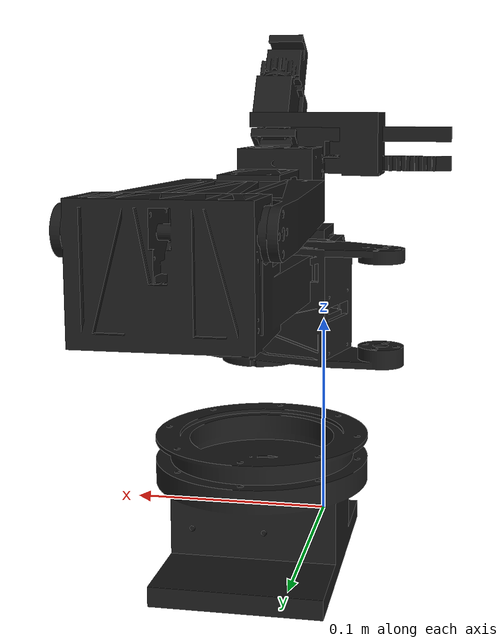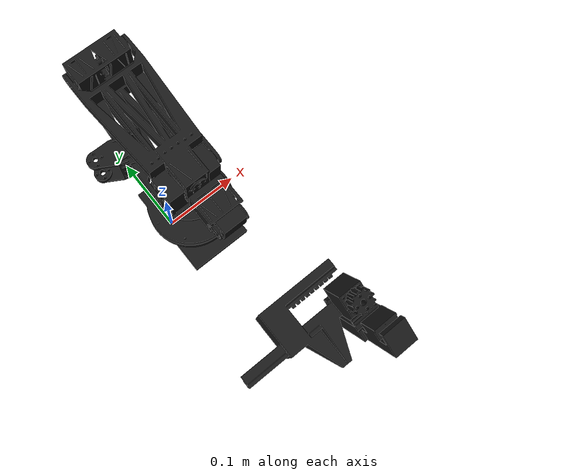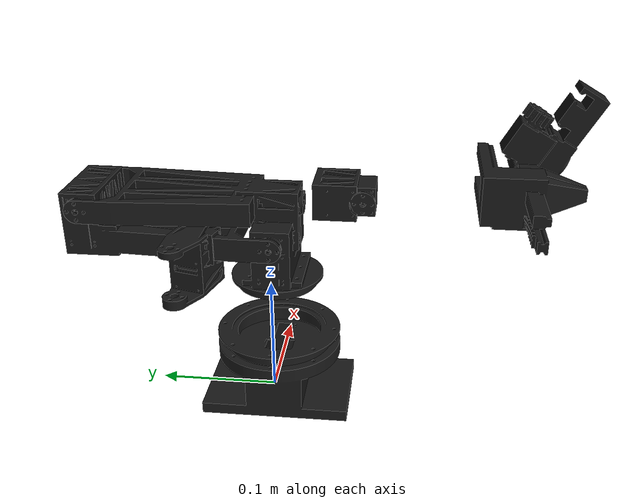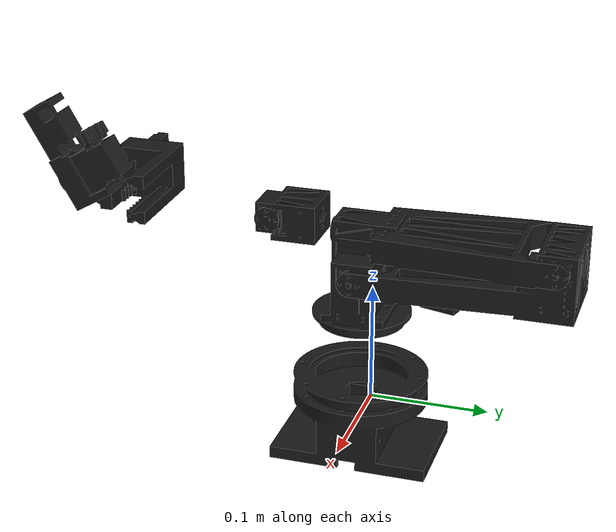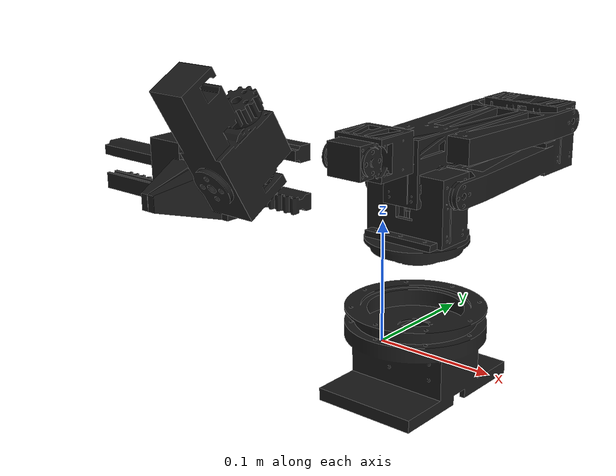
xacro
<?xml version="1.0"?>
<robot xmlns:xacro="http://www.ros.org/wiki/xacro" name="MarkII_urdf">
    <xacro:arg name="initial_positions_file" default="initial_positions.yaml" />

    <!-- Import MarkII_urdf urdf file -->
    <xacro:include filename="$(find simple_arm)/description/MarkII_urdf.urdf" />

    <!-- Import control_xacro -->
    <xacro:include filename="MarkII_urdf.ros2_control.xacro" />

    <xacro:MarkII_urdf_ros2_control name="FakeSystem" initial_positions_file="$(arg initial_positions_file)"/>

</robot>

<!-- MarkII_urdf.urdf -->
<robot name="MarkII_urdf">
    <link name="base_link">
        <inertial>
            <origin xyz="0.035458480343119846 -6.348038499793762e-05 0.04884264658749845" rpy="0.0 0.0 0.0" />
            <mass value="0.39602545916549503" />
            <inertia ixx="0.0008760560529699657" iyy="0.0006208810412874053" izz="0.0008639242629666616" ixy="-3.769413947208682e-08" iyz="4.586236426702315e-07" ixz="3.627291135214919e-05" />
        </inertial>
        <visual name="base_link_visual">
            <origin xyz="0.0 0.0 0.0" rpy="0.0 0.0 0.0" />
            <geometry>
                <mesh filename="package://simple_arm/meshes/base_link.stl" scale="0.001 0.001 0.001" />
            </geometry>
            <material name="Grey">
                <color rgba="0.1 0.1 0.1 1.0"/>
            </material>
        </visual>
        <collision name="base_link_collision">
            <origin xyz="0.0 0.0 0.0" rpy="0.0 0.0 0.0" />
            <geometry>
                <mesh filename="package://simple_arm/meshes/base_link.stl" scale="0.001 0.001 0.001" />
            </geometry>
        </collision>
    </link>
    <link name="link1">
        <inertial>
            <origin xyz="-0.0002704347594735834 5.857332049775781e-07 -0.018858068132557672" rpy="0.0 -0.0 0.0" />
            <mass value="0.1693636602695217" />
            <inertia ixx="9.137448780848672e-05" iyy="0.0001313693617072285" izz="9.559017464710466e-05" ixy="2.720487576872225e-09" iyz="-1.3245744038131203e-09" ixz="-4.5903464359968467e-07" />
        </inertial>
        <visual name="link1_visual">
            <origin xyz="9.999929548684338e-05 0.03250000019207488 0.09200000000000054" rpy="-3.1415926535897687 -7.208216521456998e-29 -1.5707963267948966" />
            <geometry>
                <mesh filename="package://simple_arm/meshes/link1.stl" scale="0.001 0.001 0.001" />
            </geometry>
            <material name="Grey">
                <color rgba="0.1 0.1 0.1 1.0"/>
            </material>
        </visual>
        <collision name="link1_collision">
            <origin xyz="9.999929548684338e-05 0.03250000019207488 0.09200000000000054" rpy="-3.1415926535897687 -7.208216521456998e-29 -1.5707963267948966" />
            <geometry>
                <mesh filename="package://simple_arm/meshes/link1.stl" scale="0.001 0.001 0.001" />
            </geometry>
        </collision>
    </link>
    <link name="link2">
        <inertial>
            <origin xyz="0.03760000011651115 0.0059319951687325555 -0.11925732977137538" rpy="7.88860905221012e-31 3.421138828918011e-49 -2.430865342914509e-63" />
            <mass value="1.7169294249777958" />
            <inertia ixx="0.0038562699005716536" iyy="0.0045067967357157665" izz="0.001231930246496139" ixy="1.5872719391665013e-16" iyz="0.00039574878190694356" ixz="7.6805583598243e-10" />
        </inertial>
        <visual name="link2_visual">
            <origin xyz="0.055865511020663394 -0.05559347310728084 0.17090147772739467" rpy="-3.1415926535897745 4.634311136164061e-15 -1.5707963267949183" />
            <geometry>
                <mesh filename="package://simple_arm/meshes/link2.stl" scale="0.001 0.001 0.001" />
            </geometry>
            <material name="Grey">
                <color rgba="0.1 0.1 0.1 1.0"/>
            </material>
        </visual>
        <collision name="link2_collision">
            <origin xyz="0.055865511020663394 -0.05559347310728084 0.17090147772739467" rpy="-3.1415926535897745 4.634311136164061e-15 -1.5707963267949183" />
            <geometry>
                <mesh filename="package://simple_arm/meshes/link2.stl" scale="0.001 0.001 0.001" />
            </geometry>
        </collision>
    </link>
    <link name="link3">
        <inertial>
            <origin xyz="0.03760663634504249 -0.0067660939590704315 -0.1156116487266119" rpy="-8.758115402030109e-47 -0.0 0.0" />
            <mass value="1.4797144091482912" />
            <inertia ixx="0.0038309475265955314" iyy="0.004170136098854015" izz="0.0009512994358775587" ixy="1.5677658128827873e-07" iyz="-0.00047433748121382917" ixz="2.834555275750896e-07" />
        </inertial>
        <visual name="link3_visual">
            <origin xyz="0.01933448921196167 0.05559347362881816 0.1709014775759369" rpy="3.1415926535897922 4.708572433932446e-16 1.5707963267949163" />
            <geometry>
                <mesh filename="package://simple_arm/meshes/link3.stl" scale="0.001 0.001 0.001" />
            </geometry>
            <material name="Grey">
                <color rgba="0.1 0.1 0.1 1.0"/>
            </material>
        </visual>
        <collision name="link3_collision">
            <origin xyz="0.01933448921196167 0.05559347362881816 0.1709014775759369" rpy="3.1415926535897922 4.708572433932446e-16 1.5707963267949163" />
            <geometry>
                <mesh filename="package://simple_arm/meshes/link3.stl" scale="0.001 0.001 0.001" />
            </geometry>
        </collision>
    </link>
    <link name="link4">
        <inertial>
            <origin xyz="-0.0006856444864441169 -0.025856823701627906 -2.6584211688884806e-07" rpy="0.0 -0.0 0.0" />
            <mass value="0.39283773638319275" />
            <inertia ixx="0.00010941578075797723" iyy="7.347508926037853e-05" izz="0.0001325327378877909" ixy="-1.7442449312230109e-06" iyz="-7.706476429498124e-11" ixz="1.5926628388861376e-09" />
        </inertial>
        <visual name="link4_visual">
            <origin xyz="-0.014999999876619503 -0.07860000031563046 0.03729999895692" rpy="-1.5707963267949088 1.5707963267948775 0" />
            <geometry>
                <mesh filename="package://simple_arm/meshes/link4.stl" scale="0.001 0.001 0.001" />
            </geometry>
            <material name="Grey">
                <color rgba="0.1 0.1 0.1 1.0"/>
            </material>
        </visual>
        <collision name="link4_collision">
            <origin xyz="-0.014999999876619503 -0.07860000031563046 0.03729999895692" rpy="-1.5707963267949088 1.5707963267948775 0" />
            <geometry>
                <mesh filename="package://simple_arm/meshes/link4.stl" scale="0.001 0.001 0.001" />
            </geometry>
        </collision>
    </link>
    <link name="link5">
        <inertial>
            <origin xyz="-0.01204269022263127 4.2064875323539755e-05 0.039175653835811335" rpy="0.0 -0.0 0.0" />
            <mass value="0.608125068740914" />
            <inertia ixx="0.00021837053677050897" iyy="0.0003469179926686751" izz="0.00024081655085987988" ixy="-7.322055258983418e-09" iyz="-6.787604473096183e-08" ixz="9.749665809387996e-06" />
        </inertial>
        <visual name="link5_visual">
            <origin xyz="-0.056699999876626564 -0.03725478487650168 -0.06389999968436498" rpy="7.746581154322007e-14 -4.565358189137846e-16 1.5707963267948781" />
            <geometry>
                <mesh filename="package://simple_arm/meshes/link5.stl" scale="0.001 0.001 0.001" />
            </geometry>
            <material name="Grey">
                <color rgba="0.1 0.1 0.1 1.0"/>
            </material>
        </visual>
        <collision name="link5_collision">
            <origin xyz="-0.056699999876626564 -0.03725478487650168 -0.06389999968436498" rpy="7.746581154322007e-14 -4.565358189137846e-16 1.5707963267948781" />
            <geometry>
                <mesh filename="package://simple_arm/meshes/link5.stl" scale="0.001 0.001 0.001" />
            </geometry>
        </collision>
    </link>
    <link name="link6">
        <inertial>
            <origin xyz="0.0006080068808218275 -0.024943614181073548 0.0228980159158138" rpy="0.0 -0.0 0.0" />
            <mass value="0.4063892862705231" />
            <inertia ixx="0.0009949238078908428" iyy="0.0009620882125333137" izz="0.0001293739180438374" ixy="-6.205679234966456e-07" iyz="-8.383963299279892e-05" ixz="-1.1902565677070848e-06" />
        </inertial>
        <visual name="link6_visual">
            <origin xyz="0.0006500001233803765 -0.033158311578043026 0.07161508819313206" rpy="2.0943950946213787 2.3888183975531057e-14 -2.029786426337192e-14" />
            <geometry>
                <mesh filename="package://simple_arm/meshes/link6.stl" scale="0.001 0.001 0.001" />
            </geometry>
            <material name="Grey">
                <color rgba="0.1 0.1 0.1 1.0"/>
            </material>
        </visual>
        <collision name="link6_collision">
            <origin xyz="0.0006500001233803765 -0.033158311578043026 0.07161508819313206" rpy="2.0943950946213787 2.3888183975531057e-14 -2.029786426337192e-14" />
            <geometry>
                <mesh filename="package://simple_arm/meshes/link6.stl" scale="0.001 0.001 0.001" />
            </geometry>
        </collision>
    </link>
    <link name="link7">
        <inertial>
            <origin xyz="-0.0013815558616599333 0.02387604371038002 -0.0013645395640511505" rpy="7.888609052210118e-31 7.888609052210118e-31 0.0" />
            <mass value="0.48075191159387803" />
            <inertia ixx="0.0003033448421816805" iyy="0.00033681236170874805" izz="0.00026092351890204246" ixy="6.005328959815351e-05" iyz="-2.1428284812280153e-05" ixz="3.5039219716827687e-05" />
        </inertial>
        <visual name="link7_visual">
            <origin xyz="0.029158762475574633 0.018856031219078046 -0.0017643185282382491" rpy="-0.5235987678264844 -1.5707963267948672 0" />
            <geometry>
                <mesh filename="package://simple_arm/meshes/link7.stl" scale="0.001 0.001 0.001" />
            </geometry>
            <material name="Grey">
                <color rgba="0.1 0.1 0.1 1.0"/>
            </material>
        </visual>
        <collision name="link7_collision">
            <origin xyz="0.029158762475574633 0.018856031219078046 -0.0017643185282382491" rpy="-0.5235987678264844 -1.5707963267948672 0" />
            <geometry>
                <mesh filename="package://simple_arm/meshes/link7.stl" scale="0.001 0.001 0.001" />
            </geometry>
        </collision>
    </link>
    <link name="link8">
        <inertial>
            <origin xyz="0.036071437879573356 -0.018378160326630137 -0.030699742058770334" rpy="3.944304526105059e-31 7.888609052210118e-31 -5.551115123125783e-17" />
            <mass value="0.2562251290131406" />
            <inertia ixx="0.00028109096751540406" iyy="0.00027154537408483753" izz="5.203384545490046e-05" ixy="-3.9514768753589474e-06" iyz="-4.019479975124516e-05" ixz="-4.704225929575951e-06" />
        </inertial>
        <visual name="link8_visual">
            <origin xyz="0.040455652057477066 -0.009090003514222431 -0.03906864449898206" rpy="-2.094395094621378 1.5707963267948704 0" />
            <geometry>
                <mesh filename="package://simple_arm/meshes/link8.stl" scale="0.001 0.001 0.001" />
            </geometry>
            <material name="Grey">
                <color rgba="0.1 0.1 0.1 1.0"/>
            </material>
        </visual>
        <collision name="link8_collision">
            <origin xyz="0.040455652057477066 -0.009090003514222431 -0.03906864449898206" rpy="-2.094395094621378 1.5707963267948704 0" />
            <geometry>
                <mesh filename="package://simple_arm/meshes/link8.stl" scale="0.001 0.001 0.001" />
            </geometry>
        </collision>
    </link>
    <joint name="base_link_Revolute-1" type="continuous">
        <origin xyz="0.0325 -0.0001 0.092" rpy="3.1415926535897927 -0.0 0.0" />
        <parent link="base_link" />
        <child link="link1" />
        <axis xyz="0.0 -5.319298016155975e-16 1.0" />
    </joint>
    <joint name="link1_Revolute-3" type="revolute">
        <origin xyz="-0.038 2.1909557501587075e-17 -0.04120000000000001" rpy="-1.5707963267949014 -1.3759121115959062e-48 2.5866422738807517e-33" />
        <parent link="link1" />
        <child link="link2" />
        <axis xyz="-1 -9.86076131526265e-32 -2.91433543964095e-15" />
        <limit lower="-0.349066" upper="3.490659" effort="1000000.0" velocity="1000000.0" />
    </joint>
    <joint name="link2_Revolute-4" type="revolute">
        <origin xyz="-4.6074255521944e-16 0.028200000000000856 -0.15829999999999986" rpy="-3.141592653589788 -6.3083005994942144e-30 -3.3964013748145005e-44" />
        <parent link="link2" />
        <child link="link3" />
        <axis xyz="-0.9999999999999999 -9.860761315262648e-32 -3.1554436208840472e-30" />
        <limit lower="0.0" upper="3.403392" effort="1000000.0" velocity="1000000.0" />
    </joint>
    <joint name="link3_Revolute-5" type="continuous">
        <origin xyz="0.0376 -0.008000000000000007 -0.18960000000000002" rpy="1.5707963267948966 -6.310887241768096e-30 -3.971572354158615e-60" />
        <parent link="link3" />
        <child link="link4" />
        <axis xyz="0.0 1.0 -3.6755994903979264e-17" />
    </joint>
    <joint name="link4_Revolute-6" type="revolute">
        <origin xyz="0.0171 -0.04360000000000001 0.0" rpy="1.5707963267948966 1.1598146964900797e-46 -3.1554436208840472e-30" />
        <parent link="link4" />
        <child link="link5" />
        <axis xyz="1.0 0.0 1.6307655579902438e-16" />
        <limit lower="-1.658063" upper="1.658063" effort="1000000.0" velocity="1000000.0" />
    </joint>
    <joint name="link5_Revolute-7" type="continuous">
        <origin xyz="-0.021700000000000014 4.521999999994364e-05 0.0706" rpy="-1.570796326794897 3.1554436208840472e-30 4.598010586065825e-46" />
        <parent link="link5" />
        <child link="link6" />
        <axis xyz="0.0 1.0 -4.3859902218644406e-16" />
    </joint>
    <joint name="link6_Slider-8" type="prismatic">
        <origin xyz="-0.012099999999999944 -0.034000140000000005 0.03283129000000003" rpy="-1.5707963267948966 0.5235987755983036 1.5707963267949092" />
        <parent link="link6" />
        <child link="link7" />
        <axis xyz="1.0040277787914188e-14 1.3663471679475653e-30 0.9999999999999999" />
        <limit lower="0.0" upper="0.045" effort="1000000.0" velocity="1000000.0" />
    </joint>
    <joint name="link7_Slider-9" type="prismatic">
        <origin xyz="0.015700000000000058 -0.034000140000000005 0.03283129000000003" rpy="-1.5707963267948966 1.0471975511965943 -1.5707963267949128" />
        <parent link="link6" />
        <child link="link8" />
        <axis xyz="0 0 1" />
        <limit lower="0.045" upper="0.0" effort="1000000.0" velocity="1000000.0" />
        <mimic joint="link6_Slider-8" multiplier="1" offset="0" />
    </joint>
    <ros2_control name="MarkIIHardware" type="system">
        <hardware>
            <plugin>mark_ii_hardware_interface/MarkIIHardwareInterface</plugin>
            <param name="serial_port">/dev/ttyUSB0</param>
            <param name="baudrate">1000000</param>
        </hardware>

        <joint name="base_link_Revolute-1">
            <command_interface name="position"/>
            <state_interface name="position"/>
        </joint>
        <joint name="link1_Revolute-3">
            <command_interface name="position"/>
            <state_interface name="position"/>
        </joint>
        <joint name="link2_Revolute-4">
            <command_interface name="position"/>
            <state_interface name="position"/>
        </joint>
        <joint name="link3_Revolute-5">
            <command_interface name="position"/>
            <state_interface name="position"/>
        </joint>
        <joint name="link4_Revolute-6">
            <command_interface name="position"/>
            <state_interface name="position"/>
        </joint>
        <joint name="link5_Revolute-7">
            <command_interface name="position"/>
            <state_interface name="position"/>
        </joint>
        <joint name="link6_Slider-8">
            <command_interface name="position"/>
            <state_interface name="position"/>
        </joint>
        <joint name="link7_Slider-9">
            <state_interface name="position"/>
        </joint>
    </ros2_control>

</robot>
